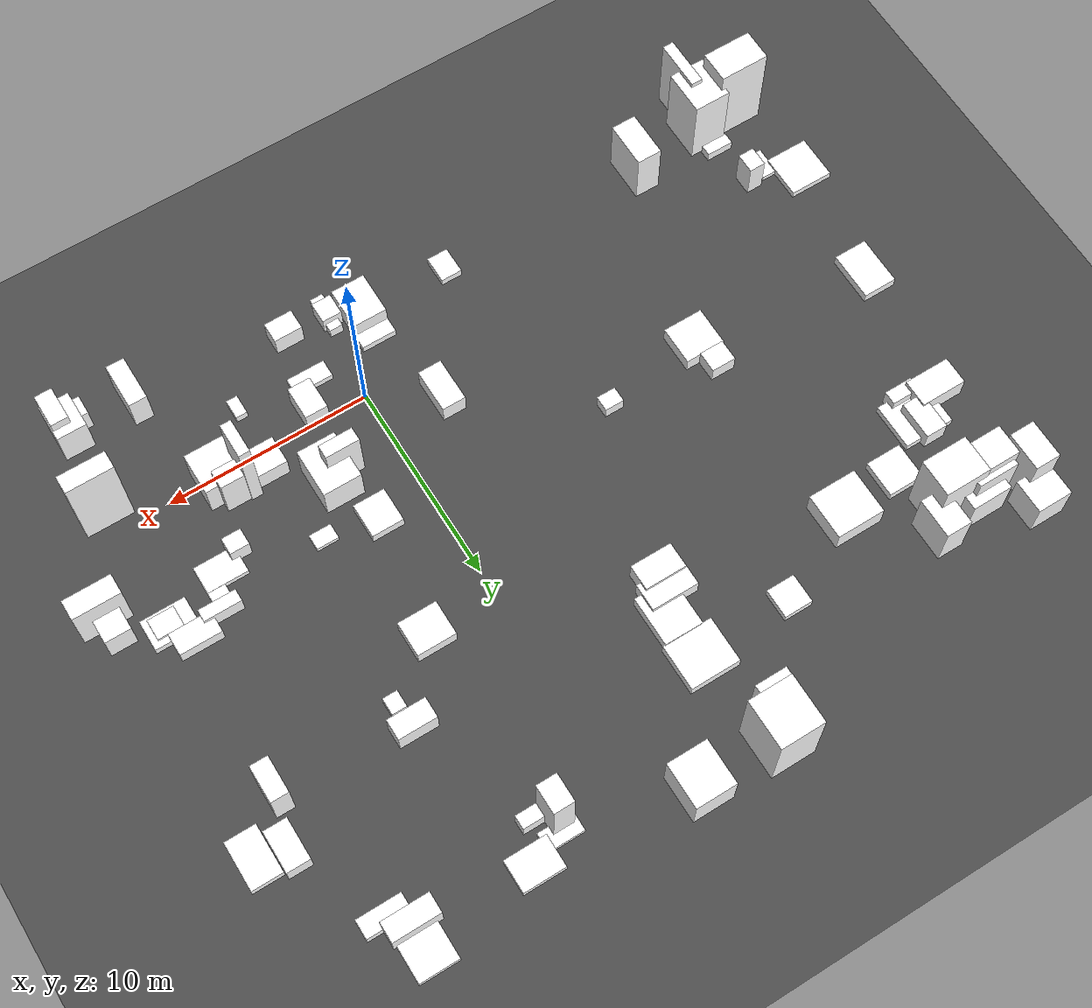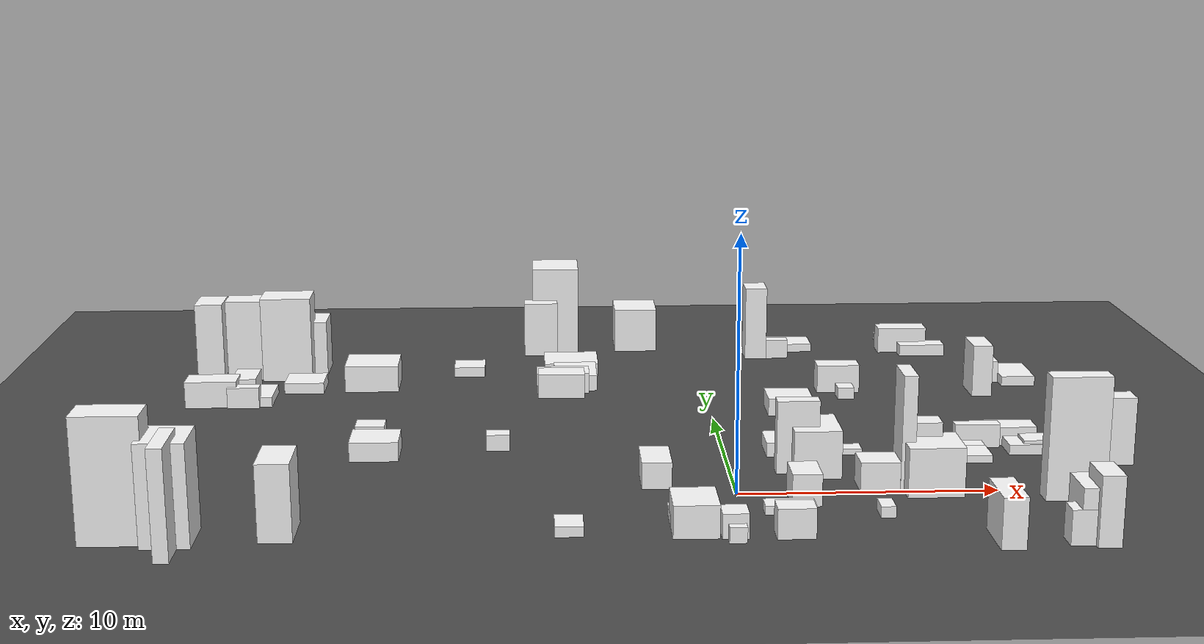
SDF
<sdf version="1.6">
 <world name="mirror_edge_world">
  <model name="ground_plane">
   <static>true</static>
   <link name="link">
    <collision name="collision">
     <geometry><plane><normal>0 0 1</normal><size>100 100</size></plane></geometry>
    </collision>
    <visual name="visual">
     <geometry><plane><normal>0 0 1</normal><size>100 100</size></plane></geometry>
     <material>
      <ambient>0.3 0.3 0.3 1</ambient>
      <diffuse>0.3 0.3 0.3 1</diffuse>
      <specular>0.5 0.5 0.5 1</specular>
      <emissive>0 0 0 1</emissive>
     </material>
    </visual>
   </link>
  </model>
  <model name="block_24_39">
   <static>true</static>
   <link name="link">
    <pose>-0.5483019030718665 -4.433742410189387 0.4715276611534394 0 0 0</pose>
    <collision name="collision">
     <geometry><box><size>0.9631364210987192 1.0516606573875218 0.9430553223068788</size></box></geometry>
    </collision>
    <visual name="visual">
     <geometry><box><size>0.9631364210987192 1.0516606573875218 0.9430553223068788</size></box></geometry>
     <material>
      <ambient>1 1 1 1</ambient>
      <diffuse>1 1 1 1</diffuse>
      <specular>0.9 0.9 0.9 1</specular>
      <emissive>0.05 0.05 0.05 1</emissive>
     </material>
    </visual>
   </link>
  </model>
  <model name="block_24_43">
   <static>true</static>
   <link name="link">
    <pose>-22.111431980746595 -0.6781245666542137 0.12893454532417004 0 0 0</pose>
    <collision name="collision">
     <geometry><box><size>0.7645795045085322 1.3623135326032354 0.25786909064834007</size></box></geometry>
    </collision>
    <visual name="visual">
     <geometry><box><size>0.7645795045085322 1.3623135326032354 0.25786909064834007</size></box></geometry>
     <material>
      <ambient>1 1 1 1</ambient>
      <diffuse>1 1 1 1</diffuse>
      <specular>0.9 0.9 0.9 1</specular>
      <emissive>0.05 0.05 0.05 1</emissive>
     </material>
    </visual>
   </link>
  </model>
  <model name="block_24_45">
   <static>true</static>
   <link name="link">
    <pose>-7.330822405540825 21.678996533170732 1.2878165623321165 0 0 0</pose>
    <visual name="visual">
     <geometry><box><size>1.5835878947664115 0.9059060111382067 2.575633124664233</size></box></geometry>
     <material>
      <ambient>1 1 1 1</ambient>
      <diffuse>1 1 1 1</diffuse>
      <specular>0.9 0.9 0.9 1</specular>
      <emissive>0.05 0.05 0.05 1</emissive>
     </material>
    </visual>
   </link>
  </model>
  <model name="block_24_47">
   <static>true</static>
   <link name="link">
    <pose>10.295506687736193 22.844440925632973 0.1661462504093411 0 0 0</pose>
    <collision name="collision">
     <geometry><box><size>1.9382771656961324 2.2151188059214513 0.3322925008186822</size></box></geometry>
    </collision>
    <visual name="visual">
     <geometry><box><size>1.9382771656961324 2.2151188059214513 0.3322925008186822</size></box></geometry>
     <material>
      <ambient>1 1 1 1</ambient>
      <diffuse>1 1 1 1</diffuse>
      <specular>0.9 0.9 0.9 1</specular>
      <emissive>0.05 0.05 0.05 1</emissive>
     </material>
    </visual>
   </link>
  </model>
  <model name="block_24_49">
   <static>true</static>
   <link name="link">
    <pose>10.236248124377482 21.659404242176688 0.5969831430839176 0 0 0</pose>
    <collision name="collision">
     <geometry><box><size>2.3328943849778834 1.0076401576341583 1.1939662861678353</size></box></geometry>
    </collision>
    <visual name="visual">
     <geometry><box><size>2.3328943849778834 1.0076401576341583 1.1939662861678353</size></box></geometry>
     <material>
      <ambient>1 1 1 1</ambient>
      <diffuse>1 1 1 1</diffuse>
      <specular>0.9 0.9 0.9 1</specular>
      <emissive>0.05 0.05 0.05 1</emissive>
     </material>
    </visual>
   </link>
  </model>
  <model name="block_24_51">
   <static>true</static>
   <link name="link">
    <pose>-22.42478475036368 -3.9924064033143982 2.3703552530027334 0 0 0</pose>
    <visual name="visual">
     <geometry><box><size>2.438677252007907 1.5572029306155546 4.740710506005467</size></box></geometry>
     <material>
      <ambient>1 1 1 1</ambient>
      <diffuse>1 1 1 1</diffuse>
      <specular>0.9 0.9 0.9 1</specular>
      <emissive>0.05 0.05 0.05 1</emissive>
     </material>
    </visual>
   </link>
  </model>
  <model name="block_24_54">
   <static>true</static>
   <link name="link">
    <pose>-21.81275165942029 13.381824847416318 0.5862840792766637 0 0 0</pose>
    <collision name="collision">
     <geometry><box><size>2.255825086784151 1.3438954812731545 1.1725681585533274</size></box></geometry>
    </collision>
    <visual name="visual">
     <geometry><box><size>2.255825086784151 1.3438954812731545 1.1725681585533274</size></box></geometry>
     <material>
      <ambient>1 1 1 1</ambient>
      <diffuse>1 1 1 1</diffuse>
      <specular>0.9 0.9 0.9 1</specular>
      <emissive>0.05 0.05 0.05 1</emissive>
     </material>
    </visual>
   </link>
  </model>
  <model name="block_24_56">
   <static>true</static>
   <link name="link">
    <pose>12.35058054863294 14.023666386773478 1.1509414264550408 0 0 0</pose>
    <visual name="visual">
     <geometry><box><size>0.879662310030012 1.8120026863700258 2.3018828529100817</size></box></geometry>
     <material>
      <ambient>1 1 1 1</ambient>
      <diffuse>1 1 1 1</diffuse>
      <specular>0.9 0.9 0.9 1</specular>
      <emissive>0.05 0.05 0.05 1</emissive>
     </material>
    </visual>
   </link>
  </model>
  <model name="block_24_57">
   <static>true</static>
   <link name="link">
    <pose>2.981526165542263 20.936115372606253 1.7187601958734413 0 0 0</pose>
    <visual name="visual">
     <geometry><box><size>1.017706862617422 1.3911029368404302 3.4375203917468826</size></box></geometry>
     <material>
      <ambient>1 1 1 1</ambient>
      <diffuse>1 1 1 1</diffuse>
      <specular>0.9 0.9 0.9 1</specular>
      <emissive>0.05 0.05 0.05 1</emissive>
     </material>
    </visual>
   </link>
  </model>
  <model name="block_24_60">
   <static>true</static>
   <link name="link">
    <pose>-14.064880891367002 5.567907877040512 0.3976343910647365 0 0 0</pose>
    <collision name="collision">
     <geometry><box><size>1.9705227585512592 1.9075109755404707 0.795268782129473</size></box></geometry>
    </collision>
    <visual name="visual">
     <geometry><box><size>1.9705227585512592 1.9075109755404707 0.795268782129473</size></box></geometry>
     <material>
      <ambient>1 1 1 1</ambient>
      <diffuse>1 1 1 1</diffuse>
      <specular>0.9 0.9 0.9 1</specular>
      <emissive>0.05 0.05 0.05 1</emissive>
     </material>
    </visual>
   </link>
  </model>
  <model name="block_24_61">
   <static>true</static>
   <link name="link">
    <pose>-14.989219486562058 16.15097467190004 0.5940687872953603 0 0 0</pose>
    <collision name="collision">
     <geometry><box><size>2.3938469131333173 2.2507552314944634 1.1881375745907206</size></box></geometry>
    </collision>
    <visual name="visual">
     <geometry><box><size>2.3938469131333173 2.2507552314944634 1.1881375745907206</size></box></geometry>
     <material>
      <ambient>1 1 1 1</ambient>
      <diffuse>1 1 1 1</diffuse>
      <specular>0.9 0.9 0.9 1</specular>
      <emissive>0.05 0.05 0.05 1</emissive>
     </material>
    </visual>
   </link>
  </model>
  <model name="block_24_62">
   <static>true</static>
   <link name="link">
    <pose>6.020773925949143 14.556648172805808 0.6213787932346575 0 0 0</pose>
    <collision name="collision">
     <geometry><box><size>1.9027477177895453 1.0226149715155275 1.242757586469315</size></box></geometry>
    </collision>
    <visual name="visual">
     <geometry><box><size>1.9027477177895453 1.0226149715155275 1.242757586469315</size></box></geometry>
     <material>
      <ambient>1 1 1 1</ambient>
      <diffuse>1 1 1 1</diffuse>
      <specular>0.9 0.9 0.9 1</specular>
      <emissive>0.05 0.05 0.05 1</emissive>
     </material>
    </visual>
   </link>
  </model>
  <model name="block_24_63">
   <static>true</static>
   <link name="link">
    <pose>6.5084253365036595 0.89827150522341 2.2635293529143556 0 0 0</pose>
    <visual name="visual">
     <geometry><box><size>0.5397802281236954 1.7120142613309528 4.527058705828711</size></box></geometry>
     <material>
      <ambient>1 1 1 1</ambient>
      <diffuse>1 1 1 1</diffuse>
      <specular>0.9 0.9 0.9 1</specular>
      <emissive>0.05 0.05 0.05 1</emissive>
     </material>
    </visual>
   </link>
  </model>
  <model name="block_24_64">
   <static>true</static>
   <link name="link">
    <pose>11.87996664811142 -5.701547448499019 0.6595695297798323 0 0 0</pose>
    <visual name="visual">
     <geometry><box><size>1.5929360654028717 0.9399440493563329 1.3191390595596646</size></box></geometry>
     <material>
      <ambient>1 1 1 1</ambient>
      <diffuse>1 1 1 1</diffuse>
      <specular>0.9 0.9 0.9 1</specular>
      <emissive>0.05 0.05 0.05 1</emissive>
     </material>
    </visual>
   </link>
  </model>
  <model name="block_24_65">
   <static>true</static>
   <link name="link">
    <pose>14.40995446030287 15.989814114176276 0.21789146718415864 0 0 0</pose>
    <collision name="collision">
     <geometry><box><size>1.5202721474067566 2.3851021775182777 0.4357829343683173</size></box></geometry>
    </collision>
    <visual name="visual">
     <geometry><box><size>1.5202721474067566 2.3851021775182777 0.4357829343683173</size></box></geometry>
     <material>
      <ambient>1 1 1 1</ambient>
      <diffuse>1 1 1 1</diffuse>
      <specular>0.9 0.9 0.9 1</specular>
      <emissive>0.05 0.05 0.05 1</emissive>
     </material>
    </visual>
   </link>
  </model>
  <model name="block_24_66">
   <static>true</static>
   <link name="link">
    <pose>2.620971588597193 2.6911077639451806 1.469998240959174 0 0 0</pose>
    <visual name="visual">
     <geometry><box><size>1.676589531221674 0.6725529959420886 2.939996481918348</size></box></geometry>
     <material>
      <ambient>1 1 1 1</ambient>
      <diffuse>1 1 1 1</diffuse>
      <specular>0.9 0.9 0.9 1</specular>
      <emissive>0.05 0.05 0.05 1</emissive>
     </material>
    </visual>
   </link>
  </model>
  <model name="block_25_1">
   <static>true</static>
   <link name="link">
    <pose>1.7357084971754553 -2.040794878211074 0.1779815128472627 0 0 0</pose>
    <collision name="collision">
     <geometry><box><size>1.8918981933608334 0.8574482315093066 0.3559630256945254</size></box></geometry>
    </collision>
    <visual name="visual">
     <geometry><box><size>1.8918981933608334 0.8574482315093066 0.3559630256945254</size></box></geometry>
     <material>
      <ambient>1 1 1 1</ambient>
      <diffuse>1 1 1 1</diffuse>
      <specular>0.9 0.9 0.9 1</specular>
      <emissive>0.05 0.05 0.05 1</emissive>
     </material>
    </visual>
   </link>
  </model>
  <model name="block_25_3">
   <static>true</static>
   <link name="link">
    <pose>-20.821076725661023 -2.5880503329725997 0.25054258732205514 0 0 0</pose>
    <collision name="collision">
     <geometry><box><size>1.3269371279065296 0.5506498402709623 0.5010851746441103</size></box></geometry>
    </collision>
    <visual name="visual">
     <geometry><box><size>1.3269371279065296 0.5506498402709623 0.5010851746441103</size></box></geometry>
     <material>
      <ambient>1 1 1 1</ambient>
      <diffuse>1 1 1 1</diffuse>
      <specular>0.9 0.9 0.9 1</specular>
      <emissive>0.05 0.05 0.05 1</emissive>
     </material>
    </visual>
   </link>
  </model>
  <model name="block_25_6">
   <static>true</static>
   <link name="link">
    <pose>10.151799483669024 4.9152310254408365 0.15242686959031015 0 0 0</pose>
    <collision name="collision">
     <geometry><box><size>0.8570277168645182 1.27056049326983 0.3048537391806203</size></box></geometry>
    </collision>
    <visual name="visual">
     <geometry><box><size>0.8570277168645182 1.27056049326983 0.3048537391806203</size></box></geometry>
     <material>
      <ambient>1 1 1 1</ambient>
      <diffuse>1 1 1 1</diffuse>
      <specular>0.9 0.9 0.9 1</specular>
      <emissive>0.05 0.05 0.05 1</emissive>
     </material>
    </visual>
   </link>
  </model>
  <model name="block_25_8">
   <static>true</static>
   <link name="link">
    <pose>12.407475191885595 -5.610352761620801 1.3184683285478058 0 0 0</pose>
    <visual name="visual">
     <geometry><box><size>0.852928312469118 1.6532879426433706 2.6369366570956116</size></box></geometry>
     <material>
      <ambient>1 1 1 1</ambient>
      <diffuse>1 1 1 1</diffuse>
      <specular>0.9 0.9 0.9 1</specular>
      <emissive>0.05 0.05 0.05 1</emissive>
     </material>
    </visual>
   </link>
  </model>
  <model name="block_25_9">
   <static>true</static>
   <link name="link">
    <pose>7.460266337063658 0.250032546343423 0.9696157775281007 0 0 0</pose>
    <visual name="visual">
     <geometry><box><size>2.1662339677656677 2.05395203990978 1.9392315550562014</size></box></geometry>
     <material>
      <ambient>1 1 1 1</ambient>
      <diffuse>1 1 1 1</diffuse>
      <specular>0.9 0.9 0.9 1</specular>
      <emissive>0.05 0.05 0.05 1</emissive>
     </material>
    </visual>
   </link>
  </model>
  <model name="block_25_10">
   <static>true</static>
   <link name="link">
    <pose>-6.428473716828396 -3.836061034162638 0.1984273855637591 0 0 0</pose>
    <collision name="collision">
     <geometry><box><size>1.0437269854940285 1.3365362078359757 0.3968547711275182</size></box></geometry>
    </collision>
    <visual name="visual">
     <geometry><box><size>1.0437269854940285 1.3365362078359757 0.3968547711275182</size></box></geometry>
     <material>
      <ambient>1 1 1 1</ambient>
      <diffuse>1 1 1 1</diffuse>
      <specular>0.9 0.9 0.9 1</specular>
      <emissive>0.05 0.05 0.05 1</emissive>
     </material>
    </visual>
   </link>
  </model>
  <model name="block_25_15">
   <static>true</static>
   <link name="link">
    <pose>-22.630685134689315 18.828530312593077 1.7206947362801106 0 0 0</pose>
    <visual name="visual">
     <geometry><box><size>1.2455378589989918 1.8934772881937685 3.441389472560221</size></box></geometry>
     <material>
      <ambient>1 1 1 1</ambient>
      <diffuse>1 1 1 1</diffuse>
      <specular>0.9 0.9 0.9 1</specular>
      <emissive>0.05 0.05 0.05 1</emissive>
     </material>
    </visual>
   </link>
  </model>
  <model name="block_25_17">
   <static>true</static>
   <link name="link">
    <pose>3.979038801703041 20.59192485711921 0.4416876783477914 0 0 0</pose>
    <collision name="collision">
     <geometry><box><size>1.0670144690868082 0.6698972768198812 0.8833753566955828</size></box></geometry>
    </collision>
    <visual name="visual">
     <geometry><box><size>1.0670144690868082 0.6698972768198812 0.8833753566955828</size></box></geometry>
     <material>
      <ambient>1 1 1 1</ambient>
      <diffuse>1 1 1 1</diffuse>
      <specular>0.9 0.9 0.9 1</specular>
      <emissive>0.05 0.05 0.05 1</emissive>
     </material>
    </visual>
   </link>
  </model>
  <model name="block_25_19">
   <static>true</static>
   <link name="link">
    <pose>3.404949252246322 11.29122009738461 0.37783281755673376 0 0 0</pose>
    <collision name="collision">
     <geometry><box><size>1.9284317952821959 1.7293062282621556 0.7556656351134675</size></box></geometry>
    </collision>
    <visual name="visual">
     <geometry><box><size>1.9284317952821959 1.7293062282621556 0.7556656351134675</size></box></geometry>
     <material>
      <ambient>1 1 1 1</ambient>
      <diffuse>1 1 1 1</diffuse>
      <specular>0.9 0.9 0.9 1</specular>
      <emissive>0.05 0.05 0.05 1</emissive>
     </material>
    </visual>
   </link>
  </model>
  <model name="block_25_23">
   <static>true</static>
   <link name="link">
    <pose>12.74740489644983 5.085227385258951 0.2713736911982402 0 0 0</pose>
    <collision name="collision">
     <geometry><box><size>1.2787528917050142 1.0315860616031938 0.5427473823964803</size></box></geometry>
    </collision>
    <visual name="visual">
     <geometry><box><size>1.2787528917050142 1.0315860616031938 0.5427473823964803</size></box></geometry>
     <material>
      <ambient>1 1 1 1</ambient>
      <diffuse>1 1 1 1</diffuse>
      <specular>0.9 0.9 0.9 1</specular>
      <emissive>0.05 0.05 0.05 1</emissive>
     </material>
    </visual>
   </link>
  </model>
  <model name="block_25_25">
   <static>true</static>
   <link name="link">
    <pose>14.910244961260034 3.34100252543825 1.3836391422503824 0 0 0</pose>
    <visual name="visual">
     <geometry><box><size>2.339080627966889 1.0000781955348466 2.767278284500765</size></box></geometry>
     <material>
      <ambient>1 1 1 1</ambient>
      <diffuse>1 1 1 1</diffuse>
      <specular>0.9 0.9 0.9 1</specular>
      <emissive>0.05 0.05 0.05 1</emissive>
     </material>
    </visual>
   </link>
  </model>
  <model name="block_25_26">
   <static>true</static>
   <link name="link">
    <pose>-20.39081823616387 12.885885095126199 0.4636842203233005 0 0 0</pose>
    <collision name="collision">
     <geometry><box><size>1.3870781245811592 0.6522022616820264 0.927368440646601</size></box></geometry>
    </collision>
    <visual name="visual">
     <geometry><box><size>1.3870781245811592 0.6522022616820264 0.927368440646601</size></box></geometry>
     <material>
      <ambient>1 1 1 1</ambient>
      <diffuse>1 1 1 1</diffuse>
      <specular>0.9 0.9 0.9 1</specular>
      <emissive>0.05 0.05 0.05 1</emissive>
     </material>
    </visual>
   </link>
  </model>
  <model name="block_25_28">
   <static>true</static>
   <link name="link">
    <pose>-17.911298424353294 19.0875161842848 1.259462988338256 0 0 0</pose>
    <visual name="visual">
     <geometry><box><size>1.269836780670968 1.9455258647663263 2.518925976676512</size></box></geometry>
     <material>
      <ambient>1 1 1 1</ambient>
      <diffuse>1 1 1 1</diffuse>
      <specular>0.9 0.9 0.9 1</specular>
      <emissive>0.05 0.05 0.05 1</emissive>
     </material>
    </visual>
   </link>
  </model>
  <model name="block_25_30">
   <static>true</static>
   <link name="link">
    <pose>1.6080865066342795 -4.577084435476754 0.5707216457873523 0 0 0</pose>
    <collision name="collision">
     <geometry><box><size>1.397888591184996 1.0151518783165063 1.1414432915747046</size></box></geometry>
    </collision>
    <visual name="visual">
     <geometry><box><size>1.397888591184996 1.0151518783165063 1.1414432915747046</size></box></geometry>
     <material>
      <ambient>1 1 1 1</ambient>
      <diffuse>1 1 1 1</diffuse>
      <specular>0.9 0.9 0.9 1</specular>
      <emissive>0.05 0.05 0.05 1</emissive>
     </material>
    </visual>
   </link>
  </model>
  <model name="block_25_32">
   <static>true</static>
   <link name="link">
    <pose>2.4515386642756276 5.45904051023643 0.2827547524598423 0 0 0</pose>
    <collision name="collision">
     <geometry><box><size>1.573469669649757 1.719670349018059 0.5655095049196845</size></box></geometry>
    </collision>
    <visual name="visual">
     <geometry><box><size>1.573469669649757 1.719670349018059 0.5655095049196845</size></box></geometry>
     <material>
      <ambient>1 1 1 1</ambient>
      <diffuse>1 1 1 1</diffuse>
      <specular>0.9 0.9 0.9 1</specular>
      <emissive>0.05 0.05 0.05 1</emissive>
     </material>
    </visual>
   </link>
  </model>
  <model name="block_25_36">
   <static>true</static>
   <link name="link">
    <pose>12.161040975310769 -5.235773374355414 1.0537153746625936 0 0 0</pose>
    <visual name="visual">
     <geometry><box><size>1.4347596030214806 1.8224539136342928 2.107430749325187</size></box></geometry>
     <material>
      <ambient>1 1 1 1</ambient>
      <diffuse>1 1 1 1</diffuse>
      <specular>0.9 0.9 0.9 1</specular>
      <emissive>0.05 0.05 0.05 1</emissive>
     </material>
    </visual>
   </link>
  </model>
  <model name="block_25_38">
   <static>true</static>
   <link name="link">
    <pose>3.1674674450411793 21.693761984668104 0.13569294400024073 0 0 0</pose>
    <collision name="collision">
     <geometry><box><size>1.783106869256764 0.9286568016588439 0.27138588800048147</size></box></geometry>
    </collision>
    <visual name="visual">
     <geometry><box><size>1.783106869256764 0.9286568016588439 0.27138588800048147</size></box></geometry>
     <material>
      <ambient>1 1 1 1</ambient>
      <diffuse>1 1 1 1</diffuse>
      <specular>0.9 0.9 0.9 1</specular>
      <emissive>0.05 0.05 0.05 1</emissive>
     </material>
    </visual>
   </link>
  </model>
  <model name="block_25_39">
   <static>true</static>
   <link name="link">
    <pose>-19.000079718401118 17.95204272647758 1.9346929496242413 0 0 0</pose>
    <visual name="visual">
     <geometry><box><size>2.2663307706572726 1.8146666362294457 3.8693858992484826</size></box></geometry>
     <material>
      <ambient>1 1 1 1</ambient>
      <diffuse>1 1 1 1</diffuse>
      <specular>0.9 0.9 0.9 1</specular>
      <emissive>0.05 0.05 0.05 1</emissive>
     </material>
    </visual>
   </link>
  </model>
  <model name="block_25_40">
   <static>true</static>
   <link name="link">
    <pose>6.207648548750679 13.342035406402125 0.25389344457543683 0 0 0</pose>
    <collision name="collision">
     <geometry><box><size>0.7306886006261037 0.8370194928194943 0.5077868891508737</size></box></geometry>
    </collision>
    <visual name="visual">
     <geometry><box><size>0.7306886006261037 0.8370194928194943 0.5077868891508737</size></box></geometry>
     <material>
      <ambient>1 1 1 1</ambient>
      <diffuse>1 1 1 1</diffuse>
      <specular>0.9 0.9 0.9 1</specular>
      <emissive>0.05 0.05 0.05 1</emissive>
     </material>
    </visual>
   </link>
  </model>
  <model name="block_25_41">
   <static>true</static>
   <link name="link">
    <pose>-1.9315268806558912 -3.8397851686808924 0.6224134098040806 0 0 0</pose>
    <collision name="collision">
     <geometry><box><size>1.6767313783814788 2.1037492794336305 1.244826819608161</size></box></geometry>
    </collision>
    <visual name="visual">
     <geometry><box><size>1.6767313783814788 2.1037492794336305 1.244826819608161</size></box></geometry>
     <material>
      <ambient>1 1 1 1</ambient>
      <diffuse>1 1 1 1</diffuse>
      <specular>0.9 0.9 0.9 1</specular>
      <emissive>0.05 0.05 0.05 1</emissive>
     </material>
    </visual>
   </link>
  </model>
  <model name="block_25_43">
   <static>true</static>
   <link name="link">
    <pose>-16.761376559597775 -3.558823860945207 1.4573076751854526 0 0 0</pose>
    <visual name="visual">
     <geometry><box><size>1.2329262529619789 2.2528939806065624 2.914615350370905</size></box></geometry>
     <material>
      <ambient>1 1 1 1</ambient>
      <diffuse>1 1 1 1</diffuse>
      <specular>0.9 0.9 0.9 1</specular>
      <emissive>0.05 0.05 0.05 1</emissive>
     </material>
    </visual>
   </link>
  </model>
  <model name="block_25_46">
   <static>true</static>
   <link name="link">
    <pose>-2.728559815286964 23.07378869150968 1.02608004674955 0 0 0</pose>
    <visual name="visual">
     <geometry><box><size>2.020849265770765 2.2334475911362883 2.0521600934991</size></box></geometry>
     <material>
      <ambient>1 1 1 1</ambient>
      <diffuse>1 1 1 1</diffuse>
      <specular>0.9 0.9 0.9 1</specular>
      <emissive>0.05 0.05 0.05 1</emissive>
     </material>
    </visual>
   </link>
  </model>
  <model name="block_25_52">
   <static>true</static>
   <link name="link">
    <pose>-0.49523176710263783 -4.443633593755584 0.29266690595359723 0 0 0</pose>
    <collision name="collision">
     <geometry><box><size>0.6414330623461881 1.882622669398445 0.5853338119071945</size></box></geometry>
    </collision>
    <visual name="visual">
     <geometry><box><size>0.6414330623461881 1.882622669398445 0.5853338119071945</size></box></geometry>
     <material>
      <ambient>1 1 1 1</ambient>
      <diffuse>1 1 1 1</diffuse>
      <specular>0.9 0.9 0.9 1</specular>
      <emissive>0.05 0.05 0.05 1</emissive>
     </material>
    </visual>
   </link>
  </model>
  <model name="block_25_53">
   <static>true</static>
   <link name="link">
    <pose>14.740641662131488 4.320035076321182 0.7942180793820508 0 0 0</pose>
    <visual name="visual">
     <geometry><box><size>1.2718428138564428 1.321561809254281 1.5884361587641016</size></box></geometry>
     <material>
      <ambient>1 1 1 1</ambient>
      <diffuse>1 1 1 1</diffuse>
      <specular>0.9 0.9 0.9 1</specular>
      <emissive>0.05 0.05 0.05 1</emissive>
     </material>
    </visual>
   </link>
  </model>
  <model name="block_25_55">
   <static>true</static>
   <link name="link">
    <pose>-20.477257873554926 14.440429131253527 0.5313825781327215 0 0 0</pose>
    <collision name="collision">
     <geometry><box><size>1.060056570614312 1.8530054667015625 1.062765156265443</size></box></geometry>
    </collision>
    <visual name="visual">
     <geometry><box><size>1.060056570614312 1.8530054667015625 1.062765156265443</size></box></geometry>
     <material>
      <ambient>1 1 1 1</ambient>
      <diffuse>1 1 1 1</diffuse>
      <specular>0.9 0.9 0.9 1</specular>
      <emissive>0.05 0.05 0.05 1</emissive>
     </material>
    </visual>
   </link>
  </model>
  <model name="block_25_58">
   <static>true</static>
   <link name="link">
    <pose>-2.158332848563912 -4.434362080468148 0.4225371926567228 0 0 0</pose>
    <collision name="collision">
     <geometry><box><size>0.8756661843130316 0.8408257581877492 0.8450743853134456</size></box></geometry>
    </collision>
    <visual name="visual">
     <geometry><box><size>0.8756661843130316 0.8408257581877492 0.8450743853134456</size></box></geometry>
     <material>
      <ambient>1 1 1 1</ambient>
      <diffuse>1 1 1 1</diffuse>
      <specular>0.9 0.9 0.9 1</specular>
      <emissive>0.05 0.05 0.05 1</emissive>
     </material>
    </visual>
   </link>
  </model>
  <model name="block_25_60">
   <static>true</static>
   <link name="link">
    <pose>-6.448296226474842 14.228652370730828 0.5444186010676564 0 0 0</pose>
    <collision name="collision">
     <geometry><box><size>2.059950329583649 1.249293132174325 1.0888372021353128</size></box></geometry>
    </collision>
    <visual name="visual">
     <geometry><box><size>2.059950329583649 1.249293132174325 1.0888372021353128</size></box></geometry>
     <material>
      <ambient>1 1 1 1</ambient>
      <diffuse>1 1 1 1</diffuse>
      <specular>0.9 0.9 0.9 1</specular>
      <emissive>0.05 0.05 0.05 1</emissive>
     </material>
    </visual>
   </link>
  </model>
  <model name="block_25_61">
   <static>true</static>
   <link name="link">
    <pose>-22.401572057941642 20.271517188990806 1.000823919880319 0 0 0</pose>
    <visual name="visual">
     <geometry><box><size>1.7383711252532377 1.6544826710625646 2.001647839760638</size></box></geometry>
     <material>
      <ambient>1 1 1 1</ambient>
      <diffuse>1 1 1 1</diffuse>
      <specular>0.9 0.9 0.9 1</specular>
      <emissive>0.05 0.05 0.05 1</emissive>
     </material>
    </visual>
   </link>
  </model>
  <model name="block_25_62">
   <static>true</static>
   <link name="link">
    <pose>12.617090883864769 -0.9091353549473542 2.3946811128558654 0 0 0</pose>
    <visual name="visual">
     <geometry><box><size>2.305300334227296 0.8791955395026481 4.789362225711731</size></box></geometry>
     <material>
      <ambient>1 1 1 1</ambient>
      <diffuse>1 1 1 1</diffuse>
      <specular>0.9 0.9 0.9 1</specular>
      <emissive>0.05 0.05 0.05 1</emissive>
     </material>
    </visual>
   </link>
  </model>
  <model name="block_25_63">
   <static>true</static>
   <link name="link">
    <pose>9.56347408187554 4.076873007624704 0.16010051835162376 0 0 0</pose>
    <collision name="collision">
     <geometry><box><size>2.013443033198575 1.3639265811912282 0.3202010367032475</size></box></geometry>
    </collision>
    <visual name="visual">
     <geometry><box><size>2.013443033198575 1.3639265811912282 0.3202010367032475</size></box></geometry>
     <material>
      <ambient>1 1 1 1</ambient>
      <diffuse>1 1 1 1</diffuse>
      <specular>0.9 0.9 0.9 1</specular>
      <emissive>0.05 0.05 0.05 1</emissive>
     </material>
    </visual>
   </link>
  </model>
  <model name="block_26_0">
   <static>true</static>
   <link name="link">
    <pose>5.727207935777173 0.7487301954057548 0.5706840484323862 0 0 0</pose>
    <collision name="collision">
     <geometry><box><size>2.0397434903734917 1.3873173934846084 1.1413680968647724</size></box></geometry>
    </collision>
    <visual name="visual">
     <geometry><box><size>2.0397434903734917 1.3873173934846084 1.1413680968647724</size></box></geometry>
     <material>
      <ambient>1 1 1 1</ambient>
      <diffuse>1 1 1 1</diffuse>
      <specular>0.9 0.9 0.9 1</specular>
      <emissive>0.05 0.05 0.05 1</emissive>
     </material>
    </visual>
   </link>
  </model>
  <model name="block_26_5">
   <static>true</static>
   <link name="link">
    <pose>-6.361889179252735 15.080911586440685 0.45873706572439865 0 0 0</pose>
    <collision name="collision">
     <geometry><box><size>2.3364090412891914 1.3255561674698253 0.9174741314487973</size></box></geometry>
    </collision>
    <visual name="visual">
     <geometry><box><size>2.3364090412891914 1.3255561674698253 0.9174741314487973</size></box></geometry>
     <material>
      <ambient>1 1 1 1</ambient>
      <diffuse>1 1 1 1</diffuse>
      <specular>0.9 0.9 0.9 1</specular>
      <emissive>0.05 0.05 0.05 1</emissive>
     </material>
    </visual>
   </link>
  </model>
  <model name="block_26_6">
   <static>true</static>
   <link name="link">
    <pose>-23.480492174174504 0.4419158109838932 0.1813988485745095 0 0 0</pose>
    <collision name="collision">
     <geometry><box><size>2.1228561676461317 2.1563874277549306 0.362797697149019</size></box></geometry>
    </collision>
    <visual name="visual">
     <geometry><box><size>2.1228561676461317 2.1563874277549306 0.362797697149019</size></box></geometry>
     <material>
      <ambient>1 1 1 1</ambient>
      <diffuse>1 1 1 1</diffuse>
      <specular>0.9 0.9 0.9 1</specular>
      <emissive>0.05 0.05 0.05 1</emissive>
     </material>
    </visual>
   </link>
  </model>
  <model name="block_26_7">
   <static>true</static>
   <link name="link">
    <pose>2.451875040350494 -0.757096607691345 0.6246798176818169 0 0 0</pose>
    <collision name="collision">
     <geometry><box><size>1.1210814025554448 1.656810080629237 1.2493596353636338</size></box></geometry>
    </collision>
    <visual name="visual">
     <geometry><box><size>1.1210814025554448 1.656810080629237 1.2493596353636338</size></box></geometry>
     <material>
      <ambient>1 1 1 1</ambient>
      <diffuse>1 1 1 1</diffuse>
      <specular>0.9 0.9 0.9 1</specular>
      <emissive>0.05 0.05 0.05 1</emissive>
     </material>
    </visual>
   </link>
  </model>
  <model name="block_26_10">
   <static>true</static>
   <link name="link">
    <pose>-20.524745985012427 -4.029156626791522 1.9269419136742294 0 0 0</pose>
    <visual name="visual">
     <geometry><box><size>1.798809241302541 2.2092771896041086 3.853883827348459</size></box></geometry>
     <material>
      <ambient>1 1 1 1</ambient>
      <diffuse>1 1 1 1</diffuse>
      <specular>0.9 0.9 0.9 1</specular>
      <emissive>0.05 0.05 0.05 1</emissive>
     </material>
    </visual>
   </link>
  </model>
  <model name="block_26_14">
   <static>true</static>
   <link name="link">
    <pose>-21.131168804776607 -0.31990267562046704 0.9369895793468181 0 0 0</pose>
    <visual name="visual">
     <geometry><box><size>0.7860858449543868 0.9764423154427941 1.8739791586936363</size></box></geometry>
     <material>
      <ambient>1 1 1 1</ambient>
      <diffuse>1 1 1 1</diffuse>
      <specular>0.9 0.9 0.9 1</specular>
      <emissive>0.05 0.05 0.05 1</emissive>
     </material>
    </visual>
   </link>
  </model>
  <model name="block_26_18">
   <static>true</static>
   <link name="link">
    <pose>-14.365772408344677 7.032009993553513 0.4485488604756178 0 0 0</pose>
    <collision name="collision">
     <geometry><box><size>1.198628277564478 1.0405518803339342 0.8970977209512356</size></box></geometry>
    </collision>
    <visual name="visual">
     <geometry><box><size>1.198628277564478 1.0405518803339342 0.8970977209512356</size></box></geometry>
     <material>
      <ambient>1 1 1 1</ambient>
      <diffuse>1 1 1 1</diffuse>
      <specular>0.9 0.9 0.9 1</specular>
      <emissive>0.05 0.05 0.05 1</emissive>
     </material>
    </visual>
   </link>
  </model>
  <model name="block_26_20">
   <static>true</static>
   <link name="link">
    <pose>5.00033550024737 5.062900284478618 0.12586610045928637 0 0 0</pose>
    <collision name="collision">
     <geometry><box><size>1.0838792380954794 0.750932978140622 0.25173220091857273</size></box></geometry>
    </collision>
    <visual name="visual">
     <geometry><box><size>1.0838792380954794 0.750932978140622 0.25173220091857273</size></box></geometry>
     <material>
      <ambient>1 1 1 1</ambient>
      <diffuse>1 1 1 1</diffuse>
      <specular>0.9 0.9 0.9 1</specular>
      <emissive>0.05 0.05 0.05 1</emissive>
     </material>
    </visual>
   </link>
  </model>
  <model name="block_26_24">
   <static>true</static>
   <link name="link">
    <pose>-9.138430792591077 6.204991950854958 0.3379106154025715 0 0 0</pose>
    <collision name="collision">
     <geometry><box><size>0.9459783258858425 0.7540600211524515 0.675821230805143</size></box></geometry>
    </collision>
    <visual name="visual">
     <geometry><box><size>0.9459783258858425 0.7540600211524515 0.675821230805143</size></box></geometry>
     <material>
      <ambient>1 1 1 1</ambient>
      <diffuse>1 1 1 1</diffuse>
      <specular>0.9 0.9 0.9 1</specular>
      <emissive>0.05 0.05 0.05 1</emissive>
     </material>
    </visual>
   </link>
  </model>
  <model name="block_26_25">
   <static>true</static>
   <link name="link">
    <pose>-18.002880108078468 15.743276178642894 0.2462045491077458 0 0 0</pose>
    <collision name="collision">
     <geometry><box><size>1.751016649508953 1.7856149696878385 0.4924090982154916</size></box></geometry>
    </collision>
    <visual name="visual">
     <geometry><box><size>1.751016649508953 1.7856149696878385 0.4924090982154916</size></box></geometry>
     <material>
      <ambient>1 1 1 1</ambient>
      <diffuse>1 1 1 1</diffuse>
      <specular>0.9 0.9 0.9 1</specular>
      <emissive>0.05 0.05 0.05 1</emissive>
     </material>
    </visual>
   </link>
  </model>
  <model name="block_26_26">
   <static>true</static>
   <link name="link">
    <pose>-22.847275361924122 6.700474293665896 0.2625571480417777 0 0 0</pose>
    <collision name="collision">
     <geometry><box><size>1.6560942751358028 2.4079364080161065 0.5251142960835554</size></box></geometry>
    </collision>
    <visual name="visual">
     <geometry><box><size>1.6560942751358028 2.4079364080161065 0.5251142960835554</size></box></geometry>
     <material>
      <ambient>1 1 1 1</ambient>
      <diffuse>1 1 1 1</diffuse>
      <specular>0.9 0.9 0.9 1</specular>
      <emissive>0.05 0.05 0.05 1</emissive>
     </material>
    </visual>
   </link>
  </model>
  <model name="block_26_27">
   <static>true</static>
   <link name="link">
    <pose>-6.613378455296317 23.148300179171407 2.049787102248707 0 0 0</pose>
    <visual name="visual">
     <geometry><box><size>2.1920117103595746 2.4135067984445975 4.099574204497414</size></box></geometry>
     <material>
      <ambient>1 1 1 1</ambient>
      <diffuse>1 1 1 1</diffuse>
      <specular>0.9 0.9 0.9 1</specular>
      <emissive>0.05 0.05 0.05 1</emissive>
     </material>
    </visual>
   </link>
  </model>
  <model name="block_26_29">
   <static>true</static>
   <link name="link">
    <pose>-2.992548616772389 1.7733292230762823 0.5266778457345586 0 0 0</pose>
    <collision name="collision">
     <geometry><box><size>1.16773715141792 2.1784040772270674 1.0533556914691171</size></box></geometry>
    </collision>
    <visual name="visual">
     <geometry><box><size>1.16773715141792 2.1784040772270674 1.0533556914691171</size></box></geometry>
     <material>
      <ambient>1 1 1 1</ambient>
      <diffuse>1 1 1 1</diffuse>
      <specular>0.9 0.9 0.9 1</specular>
      <emissive>0.05 0.05 0.05 1</emissive>
     </material>
    </visual>
   </link>
  </model>
  <model name="block_26_32">
   <static>true</static>
   <link name="link">
    <pose>-20.602224842404738 18.28444493418716 1.5733844575065414 0 0 0</pose>
    <visual name="visual">
     <geometry><box><size>2.0113924376079755 1.6122949905705166 3.146768915013083</size></box></geometry>
     <material>
      <ambient>1 1 1 1</ambient>
      <diffuse>1 1 1 1</diffuse>
      <specular>0.9 0.9 0.9 1</specular>
      <emissive>0.05 0.05 0.05 1</emissive>
     </material>
    </visual>
   </link>
  </model>
  <model name="block_26_36">
   <static>true</static>
   <link name="link">
    <pose>-5.788548616579249 16.0619160061394 0.35156366320802435 0 0 0</pose>
    <collision name="collision">
     <geometry><box><size>1.9123818470236846 2.4589429802661718 0.7031273264160487</size></box></geometry>
    </collision>
    <visual name="visual">
     <geometry><box><size>1.9123818470236846 2.4589429802661718 0.7031273264160487</size></box></geometry>
     <material>
      <ambient>1 1 1 1</ambient>
      <diffuse>1 1 1 1</diffuse>
      <specular>0.9 0.9 0.9 1</specular>
      <emissive>0.05 0.05 0.05 1</emissive>
     </material>
    </visual>
   </link>
  </model>
  <model name="block_26_37">
   <static>true</static>
   <link name="link">
    <pose>-1.916971643339778 -2.8073383646159673 0.19946753362740338 0 0 0</pose>
    <collision name="collision">
     <geometry><box><size>1.7259247029175349 1.5185652875624893 0.39893506725480676</size></box></geometry>
    </collision>
    <visual name="visual">
     <geometry><box><size>1.7259247029175349 1.5185652875624893 0.39893506725480676</size></box></geometry>
     <material>
      <ambient>1 1 1 1</ambient>
      <diffuse>1 1 1 1</diffuse>
      <specular>0.9 0.9 0.9 1</specular>
      <emissive>0.05 0.05 0.05 1</emissive>
     </material>
    </visual>
   </link>
  </model>
  <model name="block_26_38">
   <static>true</static>
   <link name="link">
    <pose>11.883761049898396 6.244767360835453 0.38566856179765896 0 0 0</pose>
    <collision name="collision">
     <geometry><box><size>2.0596228515770068 1.115317250642206 0.7713371235953179</size></box></geometry>
    </collision>
    <visual name="visual">
     <geometry><box><size>2.0596228515770068 1.115317250642206 0.7713371235953179</size></box></geometry>
     <material>
      <ambient>1 1 1 1</ambient>
      <diffuse>1 1 1 1</diffuse>
      <specular>0.9 0.9 0.9 1</specular>
      <emissive>0.05 0.05 0.05 1</emissive>
     </material>
    </visual>
   </link>
  </model>
  <model name="block_26_40">
   <static>true</static>
   <link name="link">
    <pose>8.4592951878995 3.541685485994731 0.5077871193926727 0 0 0</pose>
    <collision name="collision">
     <geometry><box><size>0.9516915842951934 0.8386529866986367 1.0155742387853455</size></box></geometry>
    </collision>
    <visual name="visual">
     <geometry><box><size>0.9516915842951934 0.8386529866986367 1.0155742387853455</size></box></geometry>
     <material>
      <ambient>1 1 1 1</ambient>
      <diffuse>1 1 1 1</diffuse>
      <specular>0.9 0.9 0.9 1</specular>
      <emissive>0.05 0.05 0.05 1</emissive>
     </material>
    </visual>
   </link>
  </model>
  <model name="block_26_43">
   <static>true</static>
   <link name="link">
    <pose>-20.385885397102154 -5.308444878627389 2.054513196535656 0 0 0</pose>
    <visual name="visual">
     <geometry><box><size>0.5556383707581549 2.4571456496314465 4.109026393071312</size></box></geometry>
     <material>
      <ambient>1 1 1 1</ambient>
      <diffuse>1 1 1 1</diffuse>
      <specular>0.9 0.9 0.9 1</specular>
      <emissive>0.05 0.05 0.05 1</emissive>
     </material>
    </visual>
   </link>
  </model>
  <model name="block_26_49">
   <static>true</static>
   <link name="link">
    <pose>12.58904167730713 5.161522700649731 0.2057742155433776 0 0 0</pose>
    <collision name="collision">
     <geometry><box><size>2.202747762291495 1.512271867596016 0.4115484310867552</size></box></geometry>
    </collision>
    <visual name="visual">
     <geometry><box><size>2.202747762291495 1.512271867596016 0.4115484310867552</size></box></geometry>
     <material>
      <ambient>1 1 1 1</ambient>
      <diffuse>1 1 1 1</diffuse>
      <specular>0.9 0.9 0.9 1</specular>
      <emissive>0.05 0.05 0.05 1</emissive>
     </material>
    </visual>
   </link>
  </model>
  <model name="block_26_50">
   <static>true</static>
   <link name="link">
    <pose>10.41920926296374 5.777872491524723 0.4819544363735448 0 0 0</pose>
    <collision name="collision">
     <geometry><box><size>1.843471288743165 0.6027638800093629 0.9639088727470896</size></box></geometry>
    </collision>
    <visual name="visual">
     <geometry><box><size>1.843471288743165 0.6027638800093629 0.9639088727470896</size></box></geometry>
     <material>
      <ambient>1 1 1 1</ambient>
      <diffuse>1 1 1 1</diffuse>
      <specular>0.9 0.9 0.9 1</specular>
      <emissive>0.05 0.05 0.05 1</emissive>
     </material>
    </visual>
   </link>
  </model>
  <model name="block_26_52">
   <static>true</static>
   <link name="link">
    <pose>7.2270293764600595 1.2190923452482698 1.2411091754317267 0 0 0</pose>
    <visual name="visual">
     <geometry><box><size>1.4066386136749454 0.9330173715220307 2.4822183508634534</size></box></geometry>
     <material>
      <ambient>1 1 1 1</ambient>
      <diffuse>1 1 1 1</diffuse>
      <specular>0.9 0.9 0.9 1</specular>
      <emissive>0.05 0.05 0.05 1</emissive>
     </material>
    </visual>
   </link>
  </model>
  <model name="block_26_55">
   <static>true</static>
   <link name="link">
    <pose>3.3180434891822728 2.8656006954123816 0.9562352473797204 0 0 0</pose>
    <visual name="visual">
     <geometry><box><size>1.8816402356258437 2.409388523213875 1.9124704947594409</size></box></geometry>
     <material>
      <ambient>1 1 1 1</ambient>
      <diffuse>1 1 1 1</diffuse>
      <specular>0.9 0.9 0.9 1</specular>
      <emissive>0.05 0.05 0.05 1</emissive>
     </material>
    </visual>
   </link>
  </model>
  <model name="block_26_58">
   <static>true</static>
   <link name="link">
    <pose>13.030811542916048 16.416452661909872 0.49973676118196736 0 0 0</pose>
    <collision name="collision">
     <geometry><box><size>1.1500639741717231 2.0367044608474276 0.9994735223639347</size></box></geometry>
    </collision>
    <visual name="visual">
     <geometry><box><size>1.1500639741717231 2.0367044608474276 0.9994735223639347</size></box></geometry>
     <material>
      <ambient>1 1 1 1</ambient>
      <diffuse>1 1 1 1</diffuse>
      <specular>0.9 0.9 0.9 1</specular>
      <emissive>0.05 0.05 0.05 1</emissive>
     </material>
    </visual>
   </link>
  </model>
  <model name="block_26_60">
   <static>true</static>
   <link name="link">
    <pose>9.005291139957478 -5.36792090534929 0.9614583972021264 0 0 0</pose>
    <visual name="visual">
     <geometry><box><size>0.9017093797119504 2.258028102824809 1.922916794404253</size></box></geometry>
     <material>
      <ambient>1 1 1 1</ambient>
      <diffuse>1 1 1 1</diffuse>
      <specular>0.9 0.9 0.9 1</specular>
      <emissive>0.05 0.05 0.05 1</emissive>
     </material>
    </visual>
   </link>
  </model>
  <model name="block_26_63">
   <static>true</static>
   <link name="link">
    <pose>-20.413978791150512 13.952595042999267 0.20652152768257598 0 0 0</pose>
    <collision name="collision">
     <geometry><box><size>2.482693079591625 2.260679496332872 0.41304305536515196</size></box></geometry>
    </collision>
    <visual name="visual">
     <geometry><box><size>2.482693079591625 2.260679496332872 0.41304305536515196</size></box></geometry>
     <material>
      <ambient>1 1 1 1</ambient>
      <diffuse>1 1 1 1</diffuse>
      <specular>0.9 0.9 0.9 1</specular>
      <emissive>0.05 0.05 0.05 1</emissive>
     </material>
    </visual>
   </link>
  </model>
  <model name="block_26_64">
   <static>true</static>
   <link name="link">
    <pose>-5.942899405414455 18.38717122134943 0.3116869208696498 0 0 0</pose>
    <collision name="collision">
     <geometry><box><size>2.4734126692318297 2.2594786672186045 0.6233738417392996</size></box></geometry>
    </collision>
    <visual name="visual">
     <geometry><box><size>2.4734126692318297 2.2594786672186045 0.6233738417392996</size></box></geometry>
     <material>
      <ambient>1 1 1 1</ambient>
      <diffuse>1 1 1 1</diffuse>
      <specular>0.9 0.9 0.9 1</specular>
      <emissive>0.05 0.05 0.05 1</emissive>
     </material>
    </visual>
   </link>
  </model>
  <model name="block_26_65">
   <static>true</static>
   <link name="link">
    <pose>4.786878917835615 22.27117828046142 0.18716354660720003 0 0 0</pose>
    <collision name="collision">
     <geometry><box><size>2.0911080992520956 1.5938725814610666 0.37432709321440005</size></box></geometry>
    </collision>
    <visual name="visual">
     <geometry><box><size>2.0911080992520956 1.5938725814610666 0.37432709321440005</size></box></geometry>
     <material>
      <ambient>1 1 1 1</ambient>
      <diffuse>1 1 1 1</diffuse>
      <specular>0.9 0.9 0.9 1</specular>
      <emissive>0.05 0.05 0.05 1</emissive>
     </material>
    </visual>
   </link>
  </model>
  <model name="block_27_3">
   <static>true</static>
   <link name="link">
    <pose>-20.162177487171487 18.495788086153855 1.065961749262131 0 0 0</pose>
    <visual name="visual">
     <geometry><box><size>1.9779130933995046 2.1081570090741 2.131923498524262</size></box></geometry>
     <material>
      <ambient>1 1 1 1</ambient>
      <diffuse>1 1 1 1</diffuse>
      <specular>0.9 0.9 0.9 1</specular>
      <emissive>0.05 0.05 0.05 1</emissive>
     </material>
    </visual>
   </link>
  </model>
  <model name="block_27_5">
   <static>true</static>
   <link name="link">
    <pose>-10.659514623532871 18.176460752518192 0.2221113009525572 0 0 0</pose>
    <collision name="collision">
     <geometry><box><size>1.4063204010910109 1.4380206466836893 0.4442226019051144</size></box></geometry>
    </collision>
    <visual name="visual">
     <geometry><box><size>1.4063204010910109 1.4380206466836893 0.4442226019051144</size></box></geometry>
     <material>
      <ambient>1 1 1 1</ambient>
      <diffuse>1 1 1 1</diffuse>
      <specular>0.9 0.9 0.9 1</specular>
      <emissive>0.05 0.05 0.05 1</emissive>
     </material>
    </visual>
   </link>
  </model>
  <model name="block_27_6">
   <static>true</static>
   <link name="link">
    <pose>5.25669552482961 -2.4493094806715523 0.21324324923689175 0 0 0</pose>
    <collision name="collision">
     <geometry><box><size>0.5528087497991716 0.9613007773145381 0.4264864984737835</size></box></geometry>
    </collision>
    <visual name="visual">
     <geometry><box><size>0.5528087497991716 0.9613007773145381 0.4264864984737835</size></box></geometry>
     <material>
      <ambient>1 1 1 1</ambient>
      <diffuse>1 1 1 1</diffuse>
      <specular>0.9 0.9 0.9 1</specular>
      <emissive>0.05 0.05 0.05 1</emissive>
     </material>
    </visual>
   </link>
  </model>
  <model name="block_27_8">
   <static>true</static>
   <link name="link">
    <pose>11.086419381994894 20.884982743850877 0.2664427926108552 0 0 0</pose>
    <collision name="collision">
     <geometry><box><size>2.1677122467741565 0.9376870076710082 0.5328855852217104</size></box></geometry>
    </collision>
    <visual name="visual">
     <geometry><box><size>2.1677122467741565 0.9376870076710082 0.5328855852217104</size></box></geometry>
     <material>
      <ambient>1 1 1 1</ambient>
      <diffuse>1 1 1 1</diffuse>
      <specular>0.9 0.9 0.9 1</specular>
      <emissive>0.05 0.05 0.05 1</emissive>
     </material>
    </visual>
   </link>
  </model>
  <model name="block_27_9">
   <static>true</static>
   <link name="link">
    <pose>-20.647435619010572 18.08372516550917 1.8467497951208105 0 0 0</pose>
    <visual name="visual">
     <geometry><box><size>2.228894410354945 1.455027236049177 3.693499590241621</size></box></geometry>
     <material>
      <ambient>1 1 1 1</ambient>
      <diffuse>1 1 1 1</diffuse>
      <specular>0.9 0.9 0.9 1</specular>
      <emissive>0.05 0.05 0.05 1</emissive>
     </material>
    </visual>
   </link>
  </model>
 </world>
</sdf>
